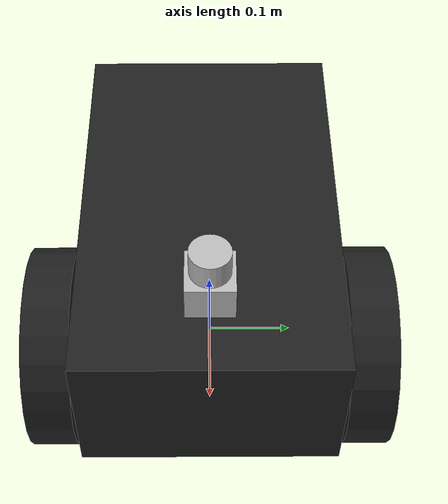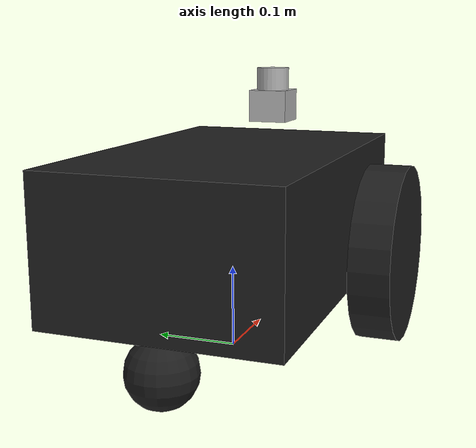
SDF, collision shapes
<?xml version="1.0" ?>

<sdf version="1.5">
  <model name="pioneer2dx">

    <link name="base_link">

      <pose>0 0 0.16 0 0 0</pose>
      <inertial>
        <mass>5.67</mass>
        <inertia>
          <ixx>0.07</ixx>
          <iyy>0.08</iyy>
          <izz>0.10</izz>
          <ixy>0</ixy>
          <ixz>0</ixz>
          <iyz>0</iyz>
        </inertia>
      </inertial>

      <collision name="collision">
        <geometry>
          <box>
            <size>0.445 0.277 0.17</size>
          </box>
        </geometry>
      </collision>
      <collision name="castor_collision">
        <pose>-0.200 0 -0.12 0 0 0</pose>
        <geometry>
          <sphere>
            <radius>0.04</radius>
          </sphere>
        </geometry>
        <surface>
          <friction>
            <ode>
              <mu>0</mu>
              <mu2>0</mu2>
              <slip1>1.0</slip1>
              <slip2>1.0</slip2>
            </ode>
          </friction>
        </surface>
      </collision>

      <visual name="visual">
        <pose>0 0 0.04 0 0 0</pose>
        <geometry>
          <mesh>
            <uri>model://pioneer2dx/meshes/chassis.dae</uri>
          </mesh>
        </geometry>
      </visual>

      <visual name="castor_visual">
        <pose>-0.200 0 -0.12 0 0 0</pose>
        <geometry>
          <sphere>
            <radius>0.04</radius>
          </sphere>
        </geometry>
        <material>
          <script>
            <uri>file://media/materials/scripts/gazebo.material</uri>
            <name>Gazebo/FlatBlack</name>
          </script>
        </material>
      </visual>

    </link>
    <link name="right_wheel">
      <pose>0.1 -.17 0.11 0 1.5707 1.5707</pose>
      <inertial>
        <mass>1.5</mass>
        <inertia>
          <ixx>0.0051</ixx>
          <iyy>0.0051</iyy>
          <izz>0.0090</izz>
          <ixy>0</ixy>
          <ixz>0</ixz>
          <iyz>0</iyz>
        </inertia>
      </inertial>
      <collision name="collision">
        <geometry>
          <cylinder>
            <radius>0.11</radius>
            <length>0.05</length>
          </cylinder>
        </geometry>
        <surface>
          <friction>
            <ode>
              <mu>100000.0</mu>
              <mu2>100000.0</mu2>
              <slip1>0.0</slip1>
              <slip2>0.0</slip2>
            </ode>
          </friction>
        </surface>
      </collision>
      <visual name="visual">
        <geometry>
          <cylinder>
            <radius>0.11</radius>
            <length>0.05</length>
          </cylinder>
        </geometry>
        <material>
          <script>
            <uri>file://media/materials/scripts/gazebo.material</uri>
            <name>Gazebo/FlatBlack</name>
          </script>
        </material>
      </visual>
    </link>

    <link name="left_wheel">
      <pose>0.1 .17 0.11 0 1.5707 1.5707</pose>
      <inertial>
        <mass>1.5</mass>
        <inertia>
          <ixx>0.0051</ixx>
          <iyy>0.0051</iyy>
          <izz>0.0090</izz>
          <ixy>0</ixy>
          <ixz>0</ixz>
          <iyz>0</iyz>
        </inertia>
      </inertial>
      <collision name="collision">
        <geometry>
          <cylinder>
            <radius>0.11</radius>
            <length>0.05</length>
          </cylinder>
        </geometry>
        <surface>
          <friction>
            <ode>
              <mu>100000.0</mu>
              <mu2>100000.0</mu2>
              <slip1>0.0</slip1>
              <slip2>0.0</slip2>
            </ode>
          </friction>
        </surface>
      </collision>
      <visual name="visual">
        <geometry>
          <cylinder>
            <radius>0.11</radius>
            <length>0.05</length>
          </cylinder>
        </geometry>
        <material>
          <script>
            <uri>file://media/materials/scripts/gazebo.material</uri>
            <name>Gazebo/FlatBlack</name>
          </script>
        </material>
      </visual>
    </link>

<!-- Add the laser range finder -->
       <link name="laser_link">
         <inertial>
           <!-- Mass of the laser range finder in kg -->
           <mass>0.1</mass>
         </inertial>
         <!-- Position is towards the front of the robot -->
         <!-- Laser finder is mounted on top -->
         <pose>0.15 0 0.30 0 0 0</pose>

         <!-- Add a mesh to make it more visually appealing -->
         <visual name="visual">
           <geometry>
             <mesh>
               <uri>model://hokuyo/meshes/hokuyo.dae</uri>
             </mesh>
           </geometry>
         </visual>

         <!-- Collision properties of the base of the laser range finder-->
         <collision name="collision-base">
           <pose>0 0 -0.0145 0 0 0</pose>
           <geometry>
             <box>
               <size>0.05 0.05 0.041</size>
             </box>
           </geometry>
         </collision>
         <!-- Collision properties of the top of the laser range finder-->
         <collision name="collision-top">
           <pose>0 0 0.0205 0 0 0</pose>
           <geometry>
             <cylinder>
               <radius>0.021</radius>
               <length>0.029</length>
             </cylinder>
           </geometry>
         </collision>

          <transform>
            <translation x="0.5" y="1.0" z="2.0" />
      <rotation roll="0.0" pitch="0.0" yaw="0.0" />
    </transform>

  <!-- Describes the type and properties of the sensor -->
	 <sensor name="laser" type="ray">
	   <pose>0.01 0 0.0175 0 -0 0</pose>
           <ray>
             <scan>
               <horizontal>
                 <samples>361</samples>
                 <resolution>1</resolution>
                 <min_angle>-3.14</min_angle>
                 <max_angle>3.14</max_angle>
               </horizontal>
             </scan>
             <range>
               <min>0.08</min>
               <max>2.5</max>
               <resolution>0.05</resolution>
             </range>
           </ray>
           <always_on>1</always_on>
           <update_rate>10</update_rate>
           <visualize>false</visualize>

           <plugin name='laser' filename='libgazebo_ros_ray_sensor.so'>
             <output_type>sensor_msgs/LaserScan</output_type>
           </plugin>
	 </sensor>
       </link>
    <!-- Connect laser range finder to the robot's body -->
    <joint type="fixed" name="laser_joint">
      <child>laser_link</child>
      <parent>base_link</parent>
    </joint>

    <joint type="revolute" name="left_wheel_hinge">
      <pose>0 0 -0.03 0 0 0</pose>
      <child>left_wheel</child>
      <parent>base_link</parent>
      <axis>
        <xyz>0 1 0</xyz>
        <use_parent_model_frame>true</use_parent_model_frame>
      </axis>
    </joint>
    <joint type="revolute" name="right_wheel_hinge">
      <pose>0 0 0.03 0 0 0</pose>
      <child>right_wheel</child>
      <parent>base_link</parent>
      <axis>
        <xyz>0 1 0</xyz>
        <use_parent_model_frame>true</use_parent_model_frame>
      </axis>
    </joint>

    <plugin filename="libDiffDrivePlugin.so" name="diff_drive">
      <left_joint>left_wheel_hinge</left_joint>
      <right_joint>right_wheel_hinge</right_joint>
      <torque>5</torque>
    </plugin>

    <!-- Controls the differential drive robot -->
    <plugin name='diff_drive' filename='libgazebo_ros_diff_drive.so'>
      <ros>
        <namespace>/demo</namespace>
        <remapping>cmd_vel:=cmd_vel</remapping>
        <remapping>odom:=odom</remapping>
      </ros>

      <!-- wheels -->
      <left_joint>left_wheel_hinge</left_joint>
      <right_joint>right_wheel_hinge</right_joint>

      <!-- kinematics -->
      <wheel_separation>0.39</wheel_separation>
      <wheel_diameter>0.15</wheel_diameter>

      <!-- limits -->
      <wheelAcceleration>0</wheelAcceleration>
      <wheelTorque>20</wheelTorque>

      <!-- output -->
      <publish_odom>true</publish_odom>
      <publish_odom_tf>true</publish_odom_tf>
      <publish_wheel_tf>true</publish_wheel_tf>

      <odometry_frame>odom</odometry_frame>
      <robot_base_frame>base_link</robot_base_frame>
    </plugin>
  </model>
</sdf>
